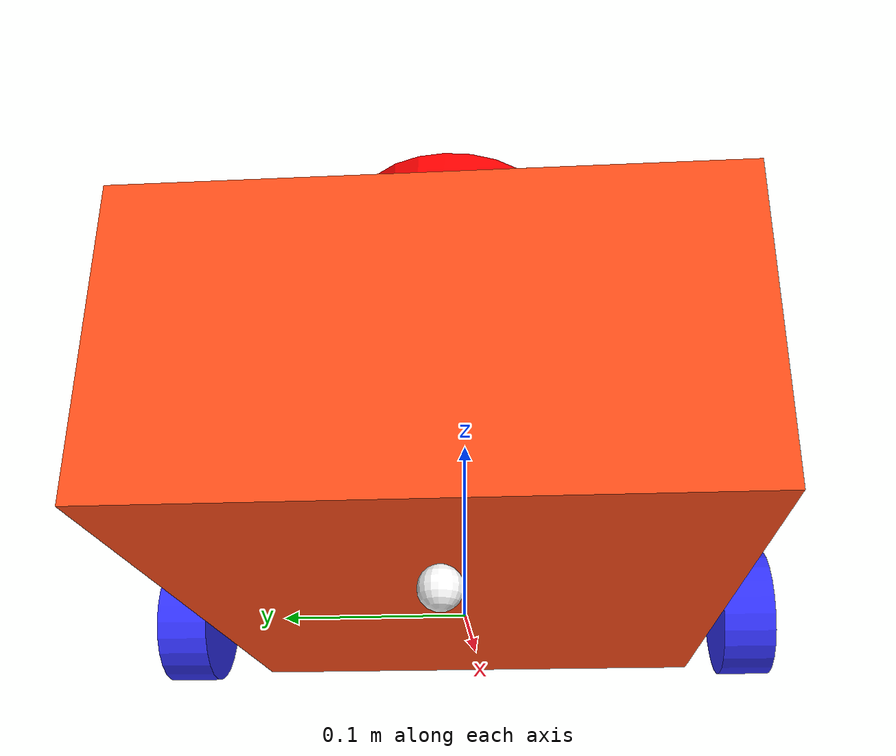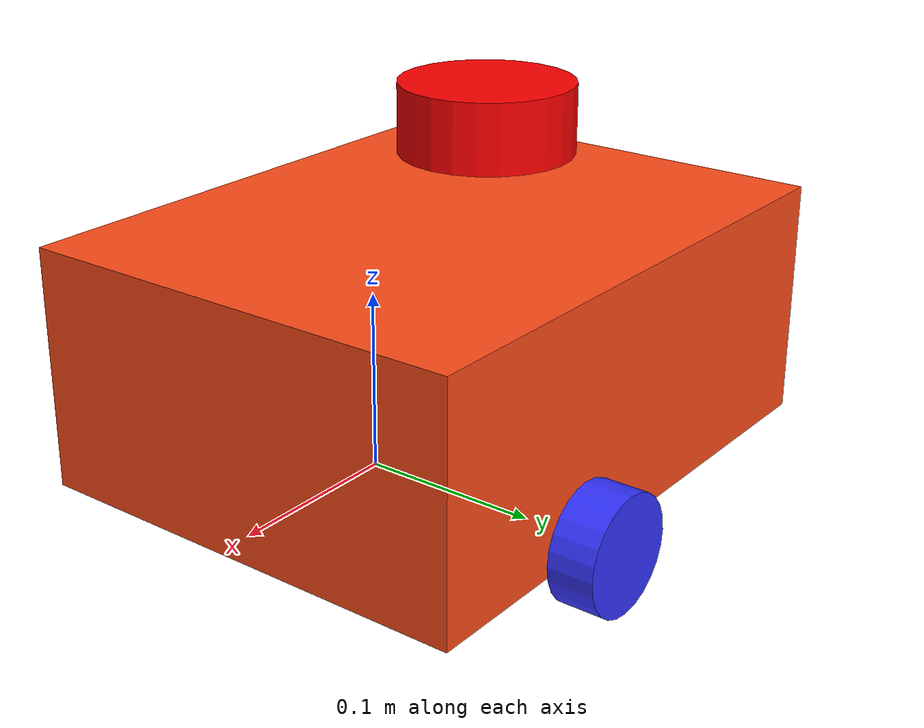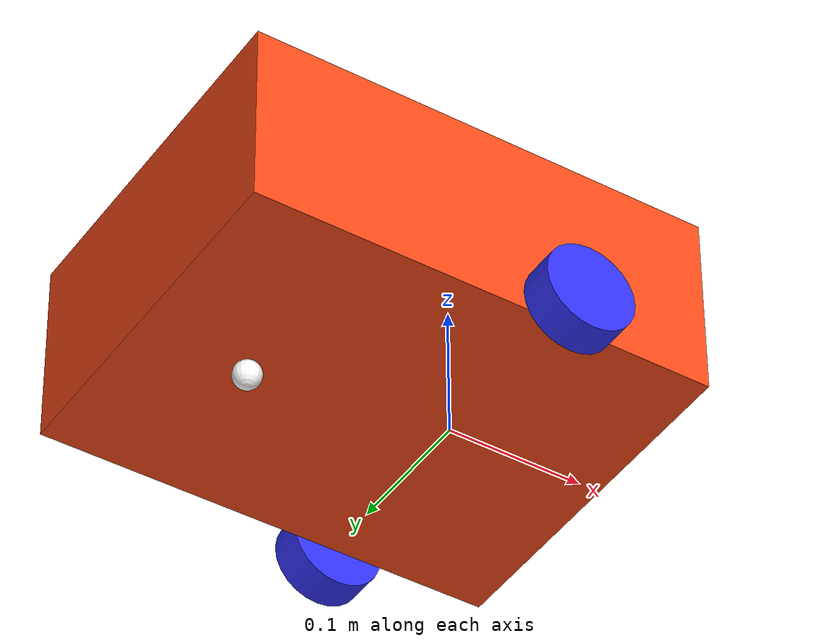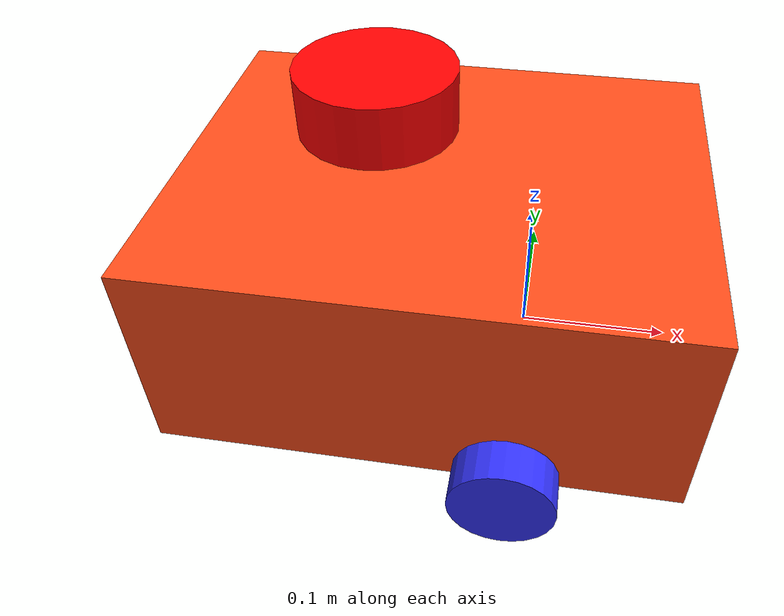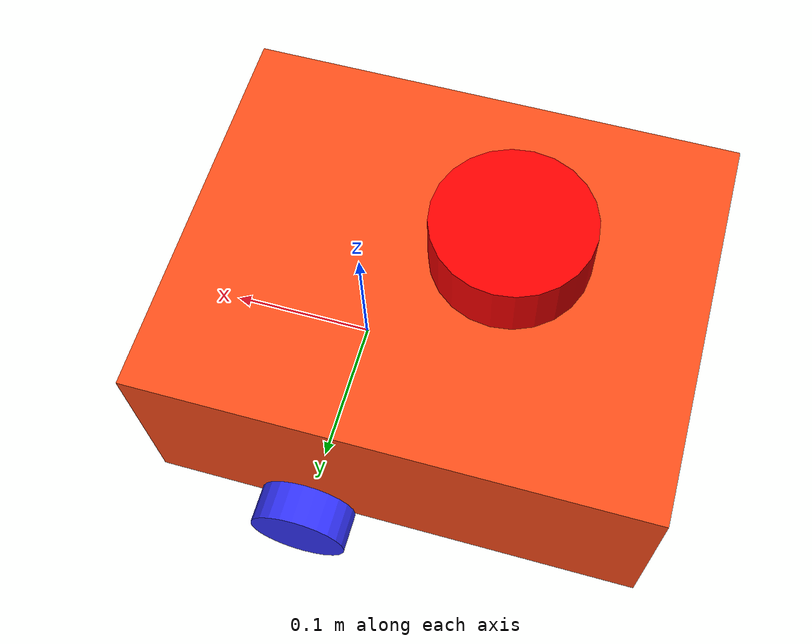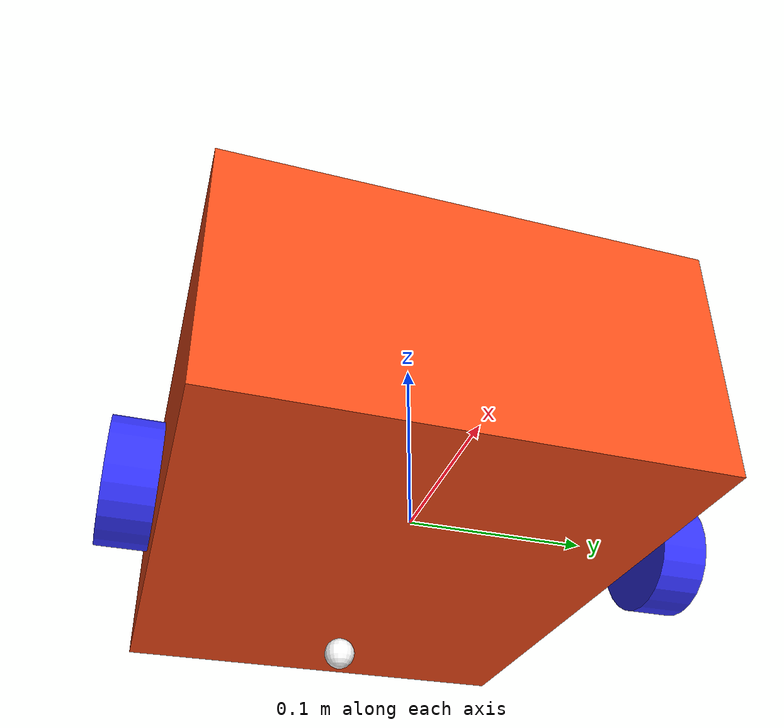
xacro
<?xml version="1.0"?>
<robot xmlns:xacro="http://www.ros.org/wiki/xacro" >
    <!-- ======= Parameters ======= -->
    <xacro:property name="chassis_length" value="0.335"/>
    <xacro:property name="chassis_width" value="0.265"/>
    <xacro:property name="chassis_height" value="0.138"/>
    <xacro:property name="chassis_mass" value="1.0"/>
    <xacro:property name="wheel_radius" value="0.033"/>
    <xacro:property name="wheel_thickness" value="0.026"/>
    <xacro:property name="wheel_mass" value="0.05"/>
    <xacro:property name="wheel_offset_x" value="0.226"/>
    <xacro:property name="wheel_offset_y" value="0.1485"/>
    <xacro:property name="wheel_offset_z" value="0.01"/>
    <xacro:property name="caster_wheel_radius" value="0.01"/>
    <xacro:property name="caster_wheel_mass" value="2"/>
    <xacro:property name="caster_wheel_offset_x" value="0.075"/>
    <xacro:property name="caster_wheel_offset_z" value="${wheel_offset_z - wheel_radius + caster_wheel_radius}"/>

    <material name="white">
        <color rgba="1 1 1 1" />
    </material>

    <material name="orange">
        <color rgba="1 0.3 0.1 1"/>
    </material>

    <material name="blue">
        <color rgba="0.2 0.2 1 1"/>
    </material>

    <material name="black">
        <color rgba="0 0 0 1"/>
    </material>

    <material name="red">
        <color rgba="1 0 0 1"/>
    </material>

    <!-- BASE LINK -->

    <link name="base_link">

    </link>

    <!-- CHASSIS LINK -->

    <joint name="chassis_joint" type="fixed">
        <parent link="base_link"/>
        <child link="chassis"/>
        <origin xyz="${-wheel_offset_x} 0 ${-wheel_offset_z}"/>
    </joint>

    <link name="chassis">
        <visual>
            <origin xyz="${chassis_length/2} 0 ${chassis_height/2}"/>
            <geometry>
                <box size="${chassis_length} ${chassis_width} ${chassis_height}"/>
            </geometry>
            <material name="orange"/>
        </visual>
    </link>

    <gazebo reference="chassis">
        <material>Gazebo/Orange</material>
    </gazebo>

    <!-- LEFT WHEEL LINK -->

    <joint name="left_wheel_joint" type="continuous">
        <parent link="base_link"/>
        <child link="left_wheel"/>
        <origin xyz="0 ${wheel_offset_y} 0" rpy="-${pi/2} 0 0" />
        <axis xyz="0 0 1"/>
    </joint>

    <link name="left_wheel">
        <visual>
            <geometry>
                <cylinder radius="${wheel_radius}" length="${wheel_thickness}"/>
            </geometry>
            <material name="blue"/>
        </visual>
    </link>

    <gazebo reference="left_wheel">
        <material>Gazebo/Blue</material>
    </gazebo>

    <!-- RIGHT WHEEL LINK -->

    <joint name="right_wheel_joint" type="continuous">
        <parent link="base_link"/>
        <child link="right_wheel"/>
        <origin xyz="0 ${-wheel_offset_y} 0" rpy="${pi/2} 0 0" />
        <axis xyz="0 0 -1"/>
    </joint>

    <link name="right_wheel">
        <visual>
            <geometry>
                <cylinder radius="${wheel_radius}" length="${wheel_thickness}"/>
            </geometry>
            <material name="blue"/>
        </visual>
    </link>

    <gazebo reference="right_wheel">
        <material>Gazebo/Blue</material>
    </gazebo>

    <!-- CASTER WHEEL LINK -->

    <joint name="caster_wheel_joint" type="fixed">
        <parent link="chassis"/>
        <child link="caster_wheel"/>
        <origin xyz="${caster_wheel_offset_x} 0 ${caster_wheel_offset_z}"/>
    </joint>

    <link name="caster_wheel">
        <visual>
            <geometry>
                <sphere radius="${caster_wheel_radius}"/>
            </geometry>
            <material name="white"/>
        </visual>
    </link>

    <gazebo reference="caster_wheel">
        <material>Gazebo/White</material>
        <mu1 value="0.001"/>
        <mu2 value="0.001"/>
    </gazebo>

    <!-- LASER-->
    <joint name="laser_joint" type="fixed">
        <parent link="base_link"/>
        <child link="laser_frame"/>
        <origin xyz="-0.1 0 0.175" rpy="0 0 3.14159"/>  <!--Điều chỉnh để cho phù hợp với chiều của lidar thực tế -->
    </joint>

    <link name="laser_frame">
        <visual>
            <geometry>
                <cylinder radius="0.05" length="0.04"/>
            </geometry>
            <material name="red"/>
        </visual>
    </link>

</robot>
